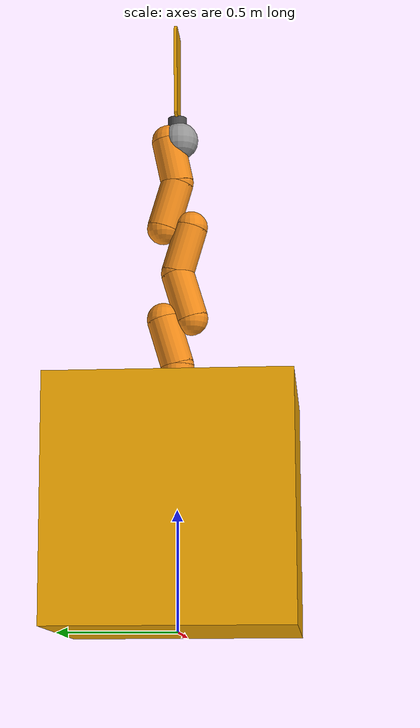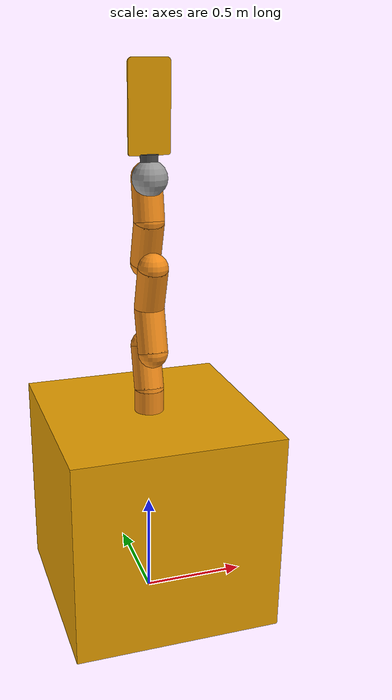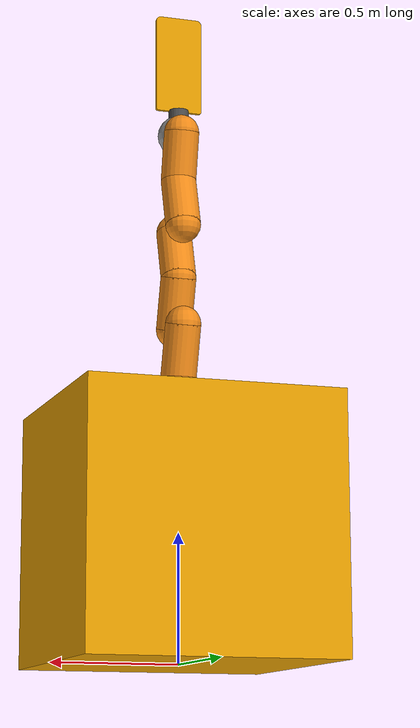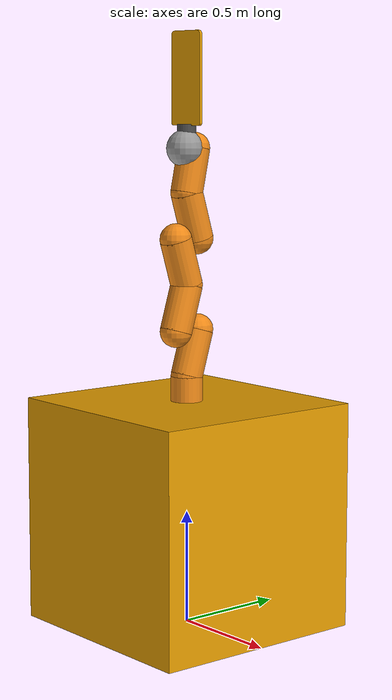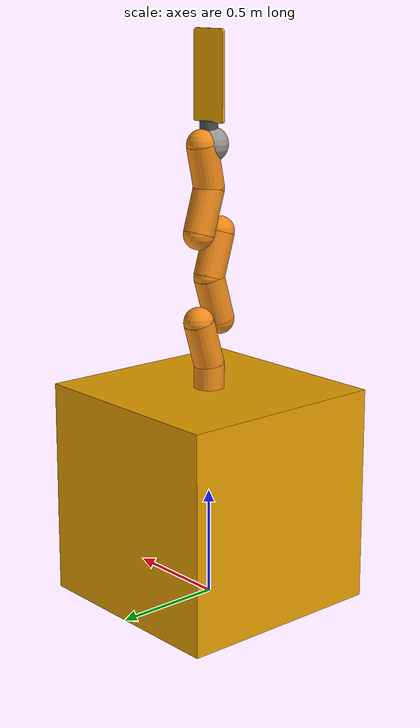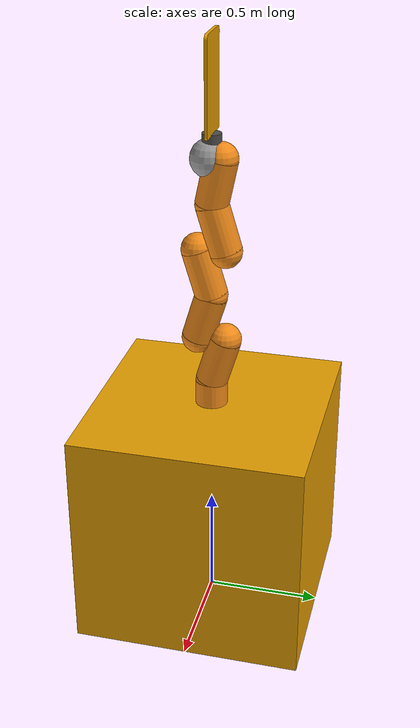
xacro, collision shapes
<?xml version="1.0"?>
<robot xmlns:xacro="http://www.ros.org/wiki/xacro" name="single_lwr_robot">

	<!-- Include all models -->
	<xacro:include filename="$(find lwr_description)/model/kuka_lwr.urdf.xacro"/>

	<!-- and assemble your robot -->
	<link name="box">
		<inertial>
			<mass value="5.0"/>
			<origin rpy="0 0 0" xyz="0 0 0"/>
			<inertia ixx="0.01"
             iyy="0.01"
             izz="0.01"
             ixy="0" iyz="0" ixz="0"/>
		</inertial>
		<visual>
			<origin xyz="0 0 0.50" rpy="0 0 0"/>
			<geometry>
				<box size="1.0 1.0 1.0"/>
			</geometry>
		</visual>
		<collision>
			<origin xyz="0 0 0.50" rpy="0 0 0"/>
			<geometry>
				<box size="1.0 1.0 1.0"/>
			</geometry>
		</collision>
	</link>

	<gazebo reference="box">
		<gravity>false</gravity>
	</gazebo>

	<!-- using the models -->
	<xacro:kuka_lwr parent="box" name="lwr">
		<origin xyz="0 0 1" rpy="0 0 0"/>
	</xacro:kuka_lwr>

	<gazebo reference="lwr_bat_link">
		<collision>
			<surface>
				<bounce>
					<restitution_coefficient>1</restitution_coefficient>
					<threshold>0.01</threshold>
				</bounce>
				<contact>
					<collide_without_contact>0</collide_without_contact>
					<collide_without_contact_bitmask>1</collide_without_contact_bitmask>
					<collide_bitmask>1</collide_bitmask>
					<ode>
						<soft_cfm>0</soft_cfm>
						<soft_erp>0.2</soft_erp>
						<kp>1e+13</kp>
						<kd>1</kd>
						<max_vel>10.0</max_vel>
						<min_depth>0</min_depth>
					</ode>
					<bullet>
						<split_impulse>1</split_impulse>
						<split_impulse_penetration_threshold>-0.01</split_impulse_penetration_threshold>
						<soft_cfm>0</soft_cfm>
						<soft_erp>0.2</soft_erp>
						<kp>1e+13</kp>
						<kd>1</kd>
					</bullet>
				</contact>
			</surface>
		</collision>
	</gazebo>

</robot>

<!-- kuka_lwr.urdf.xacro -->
<robot name="kuka_lwr" xmlns:xacro="http://www.ros.org/wiki/xacro">

	<!-- utils /-->
	<xacro:include filename="$(find lwr_description)/model/utils.xacro"/>
	<xacro:include filename="$(find lwr_description)/model/kuka_materials.xacro"/>

	<!-- gazebo and transmission models /-->
	<xacro:include filename="$(find lwr_description)/model/kuka_lwr.gazebo.xacro"/>
	<xacro:include filename="$(find lwr_description)/model/kuka_lwr.transmission.xacro"/>

	<!-- properties /-->
	<xacro:property name="base_mass" value="2.0"/>
	<xacro:property name="link_mass" value="2.35"/>
    <xacro:property name="wrist_mass" value="1.1"/>
    <xacro:property name="tip_mass" value="0.25"/>
	<xacro:property name="velocity_scale" value="1"/>
	<xacro:property name="effort_scale" value="1"/>

	<xacro:property name="max_stiffness" value="5000"/>
	<xacro:property name="min_stiffness" value="0"/>
	<xacro:property name="rate_stiffness" value="20000"/> <!-- reflex to stiffness -->
	<xacro:property name="bat_handle_offset" value="0.015"/> <!-- reflex to stiffness -->
	<xacro:property name="bat_mass_center" value="0.01"/> <!-- reflex to stiffness -->

	<!-- URDF model /-->
	<xacro:macro name="kuka_lwr" params="parent name *origin">

		<!-- First (shoulder) element of the arm. Fixed to its parent. -->
		<joint name="${parent}_${name}_base_joint" type="fixed">
			<xacro:insert_block name="origin"/>
			<origin xyz="0 0 0" rpy="0 0 0"/>
			<parent link="${parent}"/>
			<child link="${name}_base_link"/>
		</joint>

		<link name="${name}_base_link">
			<inertial>
				<mass value="${base_mass}"/>
				<origin xyz="0 0 0.055"  />
				<cylinder_inertia_def radius="0.06" length="0.11" mass="${base_mass}"/>
			</inertial>
			<visual>
				<origin xyz="0 0 0" rpy="0 0 ${M_PI}"/>
				<geometry>
					<mesh filename="package://lwr_description/meshes/lwr4plus/visual/base.STL"/>
				</geometry>
				<material name="Kuka/Orange"/>
			</visual>
			<collision>
				<origin xyz="0 0 0.055" rpy="0 0 ${M_PI}"/>
				<geometry>
					<cylinder radius="0.07" length="0.11"/>
				</geometry>
			</collision>
		</link>

		<!-- Second segment of the arm. Joint along z-axis -->
		<joint name="${name}_a1_joint" type="revolute">
			<origin xyz="0 0 0.11" rpy="0 0 0"/>
			<axis xyz="0 0 1"/>
			<limit lower="${-170 * M_PI / 180}" upper="${170 * M_PI / 180}" effort="176" velocity="${velocity_scale * 110 * M_PI / 180}" />
			<dynamics friction="10.0" damping="1.0"/>
			<parent link="${name}_base_link"/>
			<child link="${name}_1_link"/>
		</joint>

		<joint name="${name}_a1_joint_stiffness" type="revolute">
			<axis xyz="0 0 1"/>
			<limit lower="${min_stiffness}" upper="${max_stiffness}" effort="0" velocity="${rate_stiffness}" />
			<safety_controller soft_lower_limit="${min_stiffness}" soft_upper_limit="${max_stiffness}" k_position="30" k_velocity="30"/>
			<parent link="${name}_base_link"/>
			<child link="${name}_1_link_dummy"/>
		</joint>
		<link name="${name}_1_link_dummy"/>

		<link name="${name}_1_link">
			<inertial>
				<mass value="${link_mass}"/>
				<origin rpy="0 0 0" xyz="0 -0.06 0.130"/>
				<cuboid_inertia_def length="0.12" width="0.06" height="0.260" mass="${link_mass}"/>
			</inertial>
			<visual>
				<origin xyz="0 0 -0.008" rpy="0 0 ${M_PI}"/>
				<geometry>
					<mesh filename="package://lwr_description/meshes/lwr4plus/visual/link_1.STL"/>
				</geometry>
				<material name="Kuka/Orange"/>
			</visual>
			<collision>
				<origin xyz="0 0 0.0" rpy="0 0 0"/>
				<geometry>
					<sphere radius="0.07"/>
				</geometry>
			</collision>
			<collision>
				<origin xyz="0 0.06 0.2" rpy="0 0 0"/>
				<geometry>
					<sphere radius="0.07"/>
				</geometry>
			</collision>
			<collision>
				<origin xyz="0 0.03 0.1" rpy="-0.291 0 0"/>
				<geometry>
					<cylinder radius="0.07" length="0.208"/>
				</geometry>
			</collision>
		</link>

		<!-- Third segment of the arm. Joint along y-axis -->
		<joint name="${name}_a2_joint" type="revolute">
			<origin xyz="0 0 0.2005" rpy="0 0 0"/>
			<axis xyz="0 -1 0"/>
			<limit lower="${-120 * M_PI / 180}" upper="${120 * M_PI / 180}" effort="176" velocity="${velocity_scale * 110 * M_PI / 180}" />
			<dynamics friction="10.0" damping="1.0"/>
			<parent link="${name}_1_link"/>
			<child link="${name}_2_link"/>
		</joint>

		<joint name="${name}_a2_joint_stiffness" type="revolute">
			<axis xyz="0 0 1"/>
			<limit lower="${min_stiffness}" upper="${max_stiffness}" effort="0" velocity="${rate_stiffness}" />
			<safety_controller soft_lower_limit="${min_stiffness}" soft_upper_limit="${max_stiffness}" k_position="30" k_velocity="30"/>
			<parent link="${name}_1_link"/>
			<child link="${name}_2_link_dummy"/>
		</joint>
		<link name="${name}_2_link_dummy"/>

		<link name="${name}_2_link">
			<inertial>
				<mass value="${link_mass}"/>
				<origin rpy="0 0 0" xyz="0 0.06 ${0.130 - 0.06}"/>
				<cuboid_inertia_def length="0.12" width="0.06" height="0.260" mass="${link_mass}"/>
			</inertial>

			<visual>
				<origin xyz="0 0 0.0" rpy="0 0 ${M_PI}"/>
				<geometry>
					<mesh filename="package://lwr_description/meshes/lwr4plus/visual/link_2.STL"/>
				</geometry>
				<material name="Kuka/Orange"/>
			</visual>
			<collision>
				<origin xyz="0 0 0.2" rpy="0 0 0"/>
				<geometry>
					<sphere radius="0.07"/>
				</geometry>
			</collision>
			<collision>
				<origin xyz="0 -0.06 0.0" rpy="0 0 0"/>
				<geometry>
					<sphere radius="0.07"/>
				</geometry>
			</collision>
			<collision>
				<origin xyz="0 -0.03 0.1" rpy="-0.291 0 0"/>
				<geometry>
					<cylinder radius="0.07" length="0.208"/>
				</geometry>
			</collision>
		</link>

		<!-- Fourth element of the arm. z-axis -->
		<joint name="${name}_e1_joint" type="revolute">
			<origin xyz="0 0 0.20" rpy="0 0 0"/>
			<axis xyz="0 0 1"/>
			<limit lower="${-170 * M_PI / 180}" upper="${170 * M_PI / 180}" effort="100" velocity="${velocity_scale * 128 * M_PI / 180}" />
			<dynamics friction="10.0" damping="1.0"/>
			<parent link="${name}_2_link"/>
			<child link="${name}_3_link"/>
		</joint>

		<joint name="${name}_e1_joint_stiffness" type="revolute">
			<axis xyz="0 0 1"/>
			<limit lower="${min_stiffness}" upper="${max_stiffness}" effort="0" velocity="${rate_stiffness}" />
			<safety_controller soft_lower_limit="${min_stiffness}" soft_upper_limit="${max_stiffness}" k_position="30" k_velocity="30"/>
			<parent link="${name}_2_link"/>
			<child link="${name}_3_link_dummy"/>
		</joint>
		<link name="${name}_3_link_dummy"/>

		<link name="${name}_3_link">
			<inertial>
				<mass value="${link_mass}"/>
				<origin rpy="0 0 0" xyz="0 0.06 0.130"/>
				<cuboid_inertia_def length="0.12" width="0.06" height="0.260" mass="${link_mass}"/>
			</inertial>

			<visual>
				<origin xyz="0 0 -0.008" rpy="0 0 ${M_PI}"/>
				<geometry>
					<mesh filename="package://lwr_description/meshes/lwr4plus/visual/link_3.STL"/>
				</geometry>
				<material name="Kuka/Orange"/>
			</visual>
			<collision>
				<origin xyz="0 0 0.0" rpy="0 0 0"/>
				<geometry>
					<sphere radius="0.07"/>
				</geometry>
			</collision>
			<collision>
				<origin xyz="0 -0.06 0.2" rpy="0 0 0"/>
				<geometry>
					<sphere radius="0.07"/>
				</geometry>
			</collision>
			<collision>
				<origin xyz="0 -0.03 0.1" rpy="0.291 0 0"/>
				<geometry>
					<cylinder radius="0.07" length="0.208"/>
				</geometry>
			</collision>
		</link>

		<!-- fifth element of the arm. x-axis -->
		<joint name="${name}_a3_joint" type="revolute">
			<origin xyz="0 0 0.20" rpy="0 0 0"/>
			<axis xyz="0 1 0"/>
			<limit lower="${-120 * M_PI / 180}" upper="${120 * M_PI / 180}" effort="100" velocity="${velocity_scale * 128 * M_PI / 180}" />
			<dynamics friction="10.0" damping="1.0"/>
			<parent link="${name}_3_link"/>
			<child link="${name}_4_link"/>
		</joint>

		<joint name="${name}_a3_joint_stiffness" type="revolute">
			<axis xyz="0 0 1"/>
			<limit lower="${min_stiffness}" upper="${max_stiffness}" effort="0" velocity="${rate_stiffness}" />
			<safety_controller soft_lower_limit="${min_stiffness}" soft_upper_limit="${max_stiffness}" k_position="30" k_velocity="30"/>
			<parent link="${name}_3_link"/>
			<child link="${name}_4_link_dummy"/>
		</joint>
		<link name="${name}_4_link_dummy"/>

		<link name="${name}_4_link">
			<inertial>
				<mass value="${link_mass}"/>
				<origin rpy="0 0 0" xyz="0 -0.06 ${0.130 - 0.06}"/>
				<cuboid_inertia_def length="0.12" width="0.06" height="0.2600" mass="${link_mass}"/>
			</inertial>

			<visual>
				<origin xyz="0 0 0.0" rpy="0 0 ${M_PI}"/>
				<geometry>
					<mesh filename="package://lwr_description/meshes/lwr4plus/visual/link_4.STL"/>
				</geometry>
				<material name="Kuka/Orange"/>
			</visual>
			<collision>
			<origin xyz="0 0 0.2" rpy="0 0 0"/>
			<geometry>
				<sphere radius="0.07"/>
			</geometry>
			</collision>
			<collision>
				<origin xyz="0 0.06 0.0" rpy="0 0 0"/>
				<geometry>
					<sphere radius="0.07"/>
				</geometry>
			</collision>
			<collision>
				<origin xyz="0 0.03 0.1" rpy="0.291 0 0"/>
				<geometry>
					<cylinder radius="0.07" length="0.208"/>
				</geometry>
			</collision>
		</link>

		<!-- Sixth element of the arm. z-axis -->
		<joint name="${name}_a4_joint" type="revolute">
			<origin xyz="0 0 0.20" rpy="0 0 0"/>
			<axis xyz="0 0 1"/>
			<limit lower="${-170 * M_PI / 180}" upper="${170 * M_PI / 180}" effort="100" velocity="${velocity_scale * 204 * M_PI / 180}" />
			<dynamics friction="10.0" damping="1.0"/>
			<parent link="${name}_4_link"/>
			<child link="${name}_5_link"/>
		</joint>

		<joint name="${name}_a4_joint_stiffness" type="revolute">
			<axis xyz="0 0 1"/>
			<limit lower="${min_stiffness}" upper="${max_stiffness}" effort="0" velocity="${rate_stiffness}" />
			<safety_controller soft_lower_limit="${min_stiffness}" soft_upper_limit="${max_stiffness}" k_position="30" k_velocity="30"/>
			<parent link="${name}_4_link"/>
			<child link="${name}_5_link_dummy"/>
		</joint>
		<link name="${name}_5_link_dummy"/>

		<link name="${name}_5_link">
			<inertial>
				<mass value="${link_mass}"/>
				<origin rpy="0 0 0" xyz="0 0 0.124"/>
				<cuboid_inertia_def length="0.12" width="0.06" height="0.248" mass="${link_mass}"/>
			</inertial>

			<visual>
				<origin xyz="0 0 -0.008" rpy="0 0 ${M_PI}"/>
				<geometry name="${name}_5_geom">
					<mesh filename="package://lwr_description/meshes/lwr4plus/visual/link_5.STL"/>
				</geometry>
				<material name="Kuka/Orange"/>
			</visual>

			<collision>
				<origin xyz="0 0 0.0" rpy="0 0 0"/>
				<geometry>
					<sphere radius="0.07"/>
				</geometry>
			</collision>
			<collision>
				<origin xyz="0 0.04 0.19" rpy="0 0 0"/>
				<geometry>
					<sphere radius="0.07"/>
				</geometry>
			</collision>
			<collision>
				<origin xyz="0 0.02 0.095" rpy="-0.207 0 0"/>
				<geometry>
					<cylinder radius="0.07" length="0.198"/>
				</geometry>
			</collision>
		</link>

		<!-- Seventh element of the arm. z-axis -->
		<joint name="${name}_a5_joint" type="revolute">
			<origin xyz="0 0 0.19" rpy="0 0 0"/>
			<axis xyz="0 -1 0"/>
			<limit lower="${-120 * M_PI / 180}" upper="${120 * M_PI / 180}" effort="38" velocity="${velocity_scale * 184 * M_PI / 180}" />
			<dynamics friction="10.0" damping="1.0"/>
			<parent link="${name}_5_link"/>
			<child link="${name}_6_link"/>
		</joint>

		<joint name="${name}_a5_joint_stiffness" type="revolute">
			<axis xyz="0 0 1"/>
			<limit lower="${min_stiffness}" upper="${max_stiffness}" effort="0" velocity="${rate_stiffness}" />
			<safety_controller soft_lower_limit="${min_stiffness}" soft_upper_limit="${max_stiffness}" k_position="30" k_velocity="30"/>
			<parent link="${name}_5_link"/>
			<child link="${name}_6_link_dummy"/>
		</joint>
		<link name="${name}_6_link_dummy"/>

		<link name="${name}_6_link">
			<inertial>
				<mass value="${wrist_mass}"/>
				<origin rpy="0 0 0" xyz="0 0 0.0625"/>
				<cuboid_inertia_def length="0.125" width="0.125" height="0.125" mass="${wrist_mass}"/>
			</inertial>

			<visual>
				<origin xyz="0 0 0" rpy="0 0 ${M_PI}"/>
				<geometry>
					<mesh filename="package://lwr_description/meshes/lwr4plus/visual/link_6.STL"/>
				</geometry>
			<material name="Kuka/Grey"/>
			</visual>
			<collision>
			<origin xyz="0 -0.01 0" rpy="0 0 ${M_PI}"/>
			<geometry>
				<sphere radius="0.08"/>
			</geometry>
			</collision>
		</link>

		<!-- Eighth element of the arm. z-axis -->
		<joint name="${name}_a6_joint" type="revolute">
			<origin xyz="0 0 0.078" rpy="0 0 0"/>
			<axis xyz="0 0 1"/>
			<limit lower="${-170 * M_PI / 180}" upper="${170 * M_PI / 180}" effort="38" velocity="${velocity_scale * 184 * M_PI / 180}" />
			<dynamics friction="10.0" damping="1.0"/>
			<parent link="${name}_6_link"/>
			<child link="${name}_7_link"/>
		</joint>

		<joint name="${name}_a6_joint_stiffness" type="revolute">
			<axis xyz="0 0 1"/>
			<limit lower="${min_stiffness}" upper="${max_stiffness}" effort="0" velocity="${rate_stiffness}" />
			<safety_controller soft_lower_limit="${min_stiffness}" soft_upper_limit="${max_stiffness}" k_position="30" k_velocity="30"/>
			<parent link="${name}_6_link"/>
			<child link="${name}_7_link_dummy"/>
		</joint>
		<link name="${name}_7_link_dummy"/>

		<link name="${name}_7_link">
			<inertial>
				<mass value="${tip_mass}"/>
				<origin xyz="0 0 0"/>
				<cuboid_inertia_def length="0.1" width="0.1" height="0.1" mass="${tip_mass}"/>
			</inertial>
			<visual>
				<origin xyz="0 0 0" rpy="0 0 ${M_PI}"/>
				<geometry>
					<mesh filename="package://lwr_description/meshes/lwr4plus/visual/link_7.STL"/>
				</geometry>
			<material name="Kuka/DarkGrey"/>
			</visual>

			<collision>
			<origin xyz="0 0 0" rpy="0 0 ${M_PI}"/>
			<geometry>
				<cylinder radius="0.04" length="0.05"/>
			</geometry>
			</collision>
		</link>

		<joint name="${name}_bat_joint" type="fixed">
			<axis xyz="0 0 1"/>
			<parent link="${name}_7_link"/>
			<child link="${name}_bat_link"/>
		</joint>

		<!-- Cricket Bat's Joint and Link -->
		<link name="${name}_bat_link">
			<inertia>
				<mass value="0.196"/>
				<origin xyz="0 0 ${bat_mass_center}" rpy="0 0 0"/>
				<inertia ixx="0.0013552" iyy="0.0014578" izz="0.0001245" ixy="0" iyz="0" ixz="0"/>
			</inertia>
			<visual>
				<origin xyz="0 0 0" rpy="0 0 0"/>
				<geometry>
					<mesh filename="package://cricket_lwr_interface/meshes/cricket_bat_large.STL" scale="1 1 1"/>
				</geometry>
			</visual>
			<collision>
				<origin xyz="0 0 0" rpy="0 0 0"/>
				<geometry>
					<mesh filename="package://cricket_lwr_interface/meshes/cricket_bat_large.STL" scale="1 1 1"/>
				</geometry>
			</collision>>
		</link>
		<xacro:kuka_lwr_gazebo name="${name}"/>
		<xacro:kuka_lwr_transmission name="${name}"/>

	</xacro:macro>

</robot>
